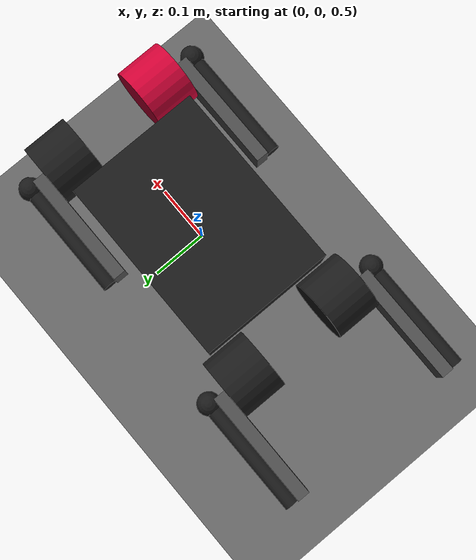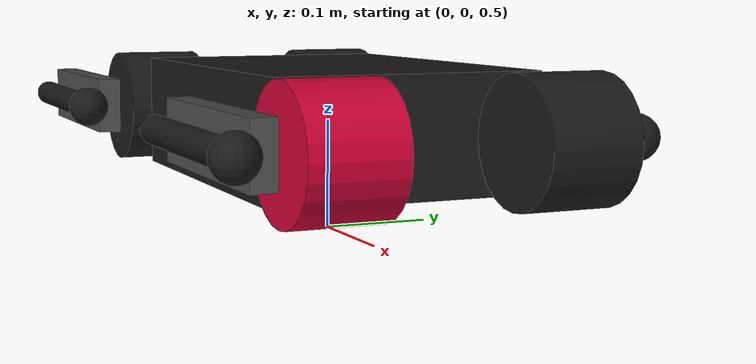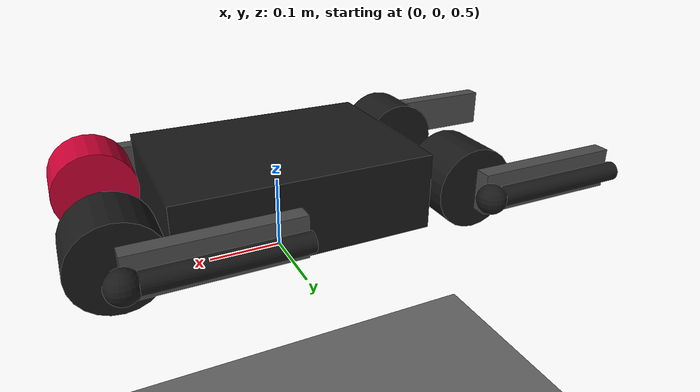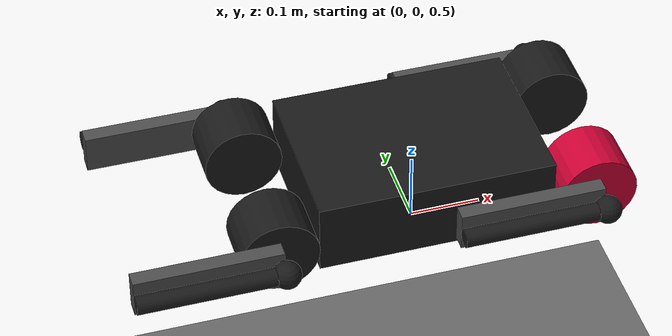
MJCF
<mujoco model="spirit">
  <compiler angle="radian" autolimits="true" coordinate="local"/>

  <default>
    <motor ctrlrange="-33.5 33.5" ctrllimited="true"/>
    <joint damping="0.01" armature="0.01" frictionloss="0.2" />
  </default>

  <asset>
    <texture builtin="gradient" height="100" rgb1="1 1 1" rgb2="0 0 0" type="skybox" width="100"/>
    <texture builtin="flat" height="1278" mark="cross" markrgb="1 1 1" name="texgeom" random="0.01" rgb1="0.8 0.6 0.4" rgb2="0.8 0.6 0.4" type="cube" width="127"/>
    <texture builtin="checker" height="100" name="texplane" rgb1="0 0 0" rgb2="0.8 0.8 0.8" type="2d" width="100"/>
    <material name="MatPlane" reflectance="0.5" shininess="1" specular="1" texrepeat="60 60" texture="texplane"/>
    <material name="geom" texture="texgeom" texuniform="true"/>
  </asset>

  <worldbody>
    <light cutoff="100" diffuse="1 1 1" dir="-0 0 -1.3" directional="true" exponent="1" pos="0 0 1.3" specular=".1 .1 .1"/>
    <geom conaffinity="1" condim="3" material="MatPlane" name="floor" pos="0 0 0" size="40 40 40" type="plane"/>
    <body name="body" pos="0.0 0.0 0.6">
      <camera name="track" mode="trackcom" pos="0 -3 0.3" xyaxes="1 0 0 0 0 1"/>
      <geom size="0.1675 0.12 0.052" type="box" rgba="0.1 0.1 0.1 1"/>
      <joint armature="0" damping="0" limited="false" margin="0.01" name="root" pos="0 0 0" type="free"/>
      <body name="hip0" pos="0.2263 0.07 0" gravcomp="0">
        <inertial pos="0 0 0" quat="0.5 0.5 -0.5 0.5" mass="0.575" diaginertia="0.000869688 0.000669635 0.000669635"/>
        <joint name="8" pos="0 0 0" axis="1 0 0" range="-0.707 0.707"/>
        <geom size="0.055 0.04" pos="0 0.028 0" quat="0.707107 0.707107 0 0" type="cylinder" rgba="0.1 0.1 0.1 1"/>
        <body name="upper0" pos="0 0.10098 0" gravcomp="0">
          <inertial pos="0 0 0" quat="0.5 0.5 0.5 0.5" mass="0.775" diaginertia="0.001 0.001 5e-05"/>
          <joint name="0" pos="0 0 0" axis="0 -1 0" range="-6.28319 6.28319"/>
          <geom size="0.103 0.011 0.0275" pos="-0.103 -0.022 0" type="box" rgba="0.3 0.3 0.3 1"/>
          <body name="lower0" pos="-0.206 0 0" gravcomp="0">
            <inertial pos="0.0343333 0 0" quat="0.5 0.5 0.5 0.5" mass="0.09" diaginertia="0.00065545 0.00065545 3e-05"/>
            <joint name="1" pos="0 0 0" axis="0 1 0" range="0 3.14159"/>
            <geom size="0.013 0.103" pos="0.103 0 0" quat="0.707107 0 0.707107 0" type="cylinder" rgba="0.1 0.1 0.1 1"/>
            <geom size="0.02" pos="0.206 0 0" rgba="0.1 0.1 0.1 1"/>
          </body>
        </body>
      </body>

      <body name="hip1" pos="-0.2263 0.07 0" gravcomp="0">
        <inertial pos="0 0 0" quat="0.5 0.5 -0.5 0.5" mass="0.575" diaginertia="0.000869688 0.000669635 0.000669635"/>
        <joint name="9" pos="0 0 0" axis="1 0 0" range="-0.707 0.707"/>
        <geom size="0.055 0.04" pos="0 0.028 0" quat="0.707107 0.707107 0 0" type="cylinder" rgba="0.1 0.1 0.1 1"/>
        <body name="upper1" pos="0 0.10098 0" gravcomp="0">
          <inertial pos="0 0 0" quat="0.5 0.5 0.5 0.5" mass="0.775" diaginertia="0.001 0.001 5e-05"/>
          <joint name="2" pos="0 0 0" axis="0 -1 0" range="-6.28319 6.28319"/>
          <geom size="0.103 0.011 0.0275" pos="-0.103 -0.022 0" type="box" rgba="0.3 0.3 0.3 1"/>
          <body name="lower1" pos="-0.206 0 0" gravcomp="0">
            <inertial pos="0.0343333 0 0" quat="0.5 0.5 0.5 0.5" mass="0.09" diaginertia="0.00065545 0.00065545 3e-05"/>
            <joint name="3" pos="0 0 0" axis="0 1 0" range="0 3.14159"/>
            <geom size="0.013 0.103" pos="0.103 0 0" quat="0.707107 0 0.707107 0" type="cylinder" rgba="0.1 0.1 0.1 1"/>
            <geom size="0.02" pos="0.206 0 0" rgba="0.1 0.1 0.1 1"/>
          </body>
        </body>
      </body>

      <body name="hip2" pos="0.2263 -0.07 0" gravcomp="0">
        <inertial pos="0 0 0" quat="0.5 0.5 -0.5 0.5" mass="0.575" diaginertia="0.000869688 0.000669635 0.000669635"/>
        <joint name="10" pos="0 0 0" axis="1 0 0" range="-0.707 0.707"/>
        <geom size="0.055 0.04" pos="0 -0.028 0" quat="0.707107 0.707107 0 0" type="cylinder" rgba="0.8 0 0.2 1"/>
        <body name="upper2" pos="0 -0.10098 0" gravcomp="0">
          <inertial pos="0 0 0" quat="0.5 0.5 0.5 0.5" mass="0.775" diaginertia="0.001 0.001 5e-05"/>
          <joint name="4" pos="0 0 0" axis="0 -1 0" range="-6.28319 6.28319"/>
          <geom size="0.103 0.011 0.0275" pos="-0.103 0.022 0" type="box" rgba="0.3 0.3 0.3 1"/>
          <body name="lower2" pos="-0.206 0 0" gravcomp="0">
            <inertial pos="0.0343333 0 0" quat="0.5 0.5 0.5 0.5" mass="0.09" diaginertia="0.00065545 0.00065545 3e-05"/>
            <joint name="5" pos="0 0 0" axis="0 1 0" range="0 3.14159"/>
            <geom size="0.013 0.103" pos="0.103 0 0" quat="0.707107 0 0.707107 0" type="cylinder" rgba="0.1 0.1 0.1 1"/>
            <geom size="0.02" pos="0.206 0 0" rgba="0.1 0.1 0.1 1"/>
          </body>
        </body>
      </body>

      <body name="hip3" pos="-0.2263 -0.07 0" gravcomp="0">
        <inertial pos="0 0 0" quat="0.5 0.5 -0.5 0.5" mass="0.575" diaginertia="0.000869688 0.000669635 0.000669635"/>
        <joint name="11" pos="0 0 0" axis="1 0 0" range="-0.707 0.707"/>
        <geom size="0.055 0.04" pos="0 -0.028 0" quat="0.707107 0.707107 0 0" type="cylinder" rgba="0.1 0.1 0.1 1"/>
        <body name="upper3" pos="0 -0.10098 0" gravcomp="0">
          <inertial pos="0 0 0" quat="0.5 0.5 0.5 0.5" mass="0.775" diaginertia="0.001 0.001 5e-05"/>
          <joint name="6" pos="0 0 0" axis="0 -1 0" range="-6.28319 6.28319"/>
          <geom size="0.103 0.011 0.0275" pos="-0.103 0.022 0" type="box" rgba="0.3 0.3 0.3 1"/>
          <body name="lower3" pos="-0.206 0 0" gravcomp="0">
            <inertial pos="0.0343333 0 0" quat="0.5 0.5 0.5 0.5" mass="0.09" diaginertia="0.00065545 0.00065545 3e-05"/>
            <joint name="7" pos="0 0 0" axis="0 1 0" range="0 3.14159"/>
            <geom size="0.013 0.103" pos="0.103 0 0" quat="0.707107 0 0.707107 0" type="cylinder" rgba="0.1 0.1 0.1 1"/>
            <geom size="0.02" pos="0.206 0 0" rgba="0.1 0.1 0.1 1"/>
          </body>
        </body>
      </body>
    </body>
  </worldbody>
  <actuator>
    <motor joint="8" gear="1"/>
    <motor joint="0" gear="1"/>
    <motor joint="1" gear="1"/>

    <motor joint="9" gear="1"/>
    <motor joint="2" gear="1"/>
    <motor joint="3" gear="1"/>

    <motor joint="10" gear="1"/>
    <motor joint="4" gear="1"/>
    <motor joint="5" gear="1"/>

    <motor joint="11" gear="1"/>
    <motor joint="6" gear="1"/>
    <motor joint="7" gear="1"/>
  </actuator>
</mujoco>
